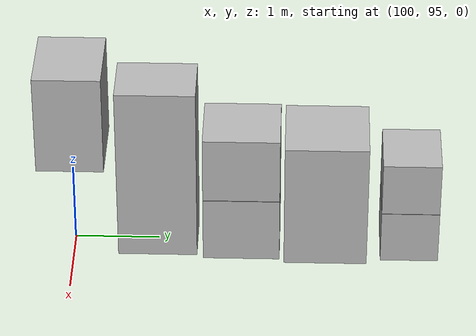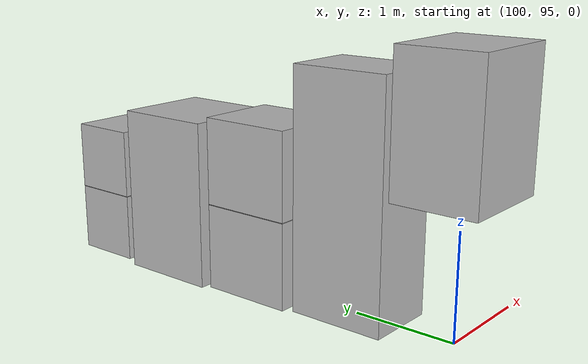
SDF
<sdf version="1.5">
 <world name="default">
  <model name="ground_plane">
   <static>true</static>
   <link name="link">
    <collision name="collision">
     <geometry><plane><normal>0 0 1</normal><size>250 250</size></plane></geometry>
     <surface><friction><ode><mu>1</mu><mu2>1</mu2></ode></friction></surface>
    </collision>
    <visual name="grass">
     <cast_shadows>false</cast_shadows>
     <geometry><mesh><uri>file://grass_plane/meshes/grass_plane.dae</uri></mesh></geometry>
    </visual>
   </link>
  </model>
  <model name="Cardboard_box_top_465">
   <link name="link_0">
    <pose>100 95 1.27230004981 0 0 0</pose>
    <inertial>
     <mass>1</mass>
     <inertia>
      <ixx>0.166667</ixx>
      <ixy>0</ixy>
      <ixz>0</ixz>
      <iyy>0.166667</iyy>
      <iyz>0</iyz>
      <izz>0.166667</izz>
     </inertia>
    </inertial>
    <collision name="collision">
     <geometry>
      <mesh>
       <uri>model://Cardboard_box/meshes/cardboard_box.dae</uri>
       <scale>2.34140249197 1.99526589595 3.18075012451</scale>
      </mesh>
     </geometry>
    </collision>
    <visual name="visual">
     <geometry>
      <mesh>
       <uri>model://Cardboard_box/meshes/cardboard_box.dae</uri>
       <scale>2.34140249197 1.99526589595 3.18075012451</scale>
      </mesh>
     </geometry>
    </visual>
   </link>
   <static>1</static>
  </model>
  <model name="Cardboard_box_466">
   <link name="link_0">
    <pose>100 96 0 0 0 0</pose>
    <inertial>
     <mass>1</mass>
     <inertia>
      <ixx>0.166667</ixx>
      <ixy>0</ixy>
      <ixz>0</ixz>
      <iyy>0.166667</iyy>
      <iyz>0</iyz>
      <izz>0.166667</izz>
     </inertia>
    </inertial>
    <collision name="collision">
     <geometry>
      <mesh>
       <uri>model://Cardboard_box/meshes/cardboard_box.dae</uri>
       <scale>1.7558336098 2.36996305045 5.7178186856</scale>
      </mesh>
     </geometry>
    </collision>
    <visual name="visual">
     <geometry>
      <mesh>
       <uri>model://Cardboard_box/meshes/cardboard_box.dae</uri>
       <scale>1.7558336098 2.36996305045 5.7178186856</scale>
      </mesh>
     </geometry>
    </visual>
   </link>
   <static>1</static>
  </model>
  <model name="Cardboard_box_467">
   <link name="link_0">
    <pose>100 97 0 0 0 0</pose>
    <inertial>
     <mass>1</mass>
     <inertia>
      <ixx>0.166667</ixx>
      <ixy>0</ixy>
      <ixz>0</ixz>
      <iyy>0.166667</iyy>
      <iyz>0</iyz>
      <izz>0.166667</izz>
     </inertia>
    </inertial>
    <collision name="collision">
     <geometry>
      <mesh>
       <uri>model://Cardboard_box/meshes/cardboard_box.dae</uri>
       <scale>2.04441788136 2.28997250621 2.10989312035</scale>
      </mesh>
     </geometry>
    </collision>
    <visual name="visual">
     <geometry>
      <mesh>
       <uri>model://Cardboard_box/meshes/cardboard_box.dae</uri>
       <scale>2.04441788136 2.28997250621 2.10989312035</scale>
      </mesh>
     </geometry>
    </visual>
   </link>
   <static>1</static>
  </model>
  <model name="Cardboard_box_top_467">
   <link name="link_0">
    <pose>100 97 0.84395724814 0 0 0</pose>
    <inertial>
     <mass>1</mass>
     <inertia>
      <ixx>0.166667</ixx>
      <ixy>0</ixy>
      <ixz>0</ixz>
      <iyy>0.166667</iyy>
      <iyz>0</iyz>
      <izz>0.166667</izz>
     </inertia>
    </inertial>
    <collision name="collision">
     <geometry>
      <mesh>
       <uri>model://Cardboard_box/meshes/cardboard_box.dae</uri>
       <scale>2.04441788136 2.28997250621 2.10989312035</scale>
      </mesh>
     </geometry>
    </collision>
    <visual name="visual">
     <geometry>
      <mesh>
       <uri>model://Cardboard_box/meshes/cardboard_box.dae</uri>
       <scale>2.04441788136 2.28997250621 2.10989312035</scale>
      </mesh>
     </geometry>
    </visual>
   </link>
   <static>1</static>
  </model>
  <model name="Cardboard_box_468">
   <link name="link_0">
    <pose>100 98 0 0 0 0</pose>
    <inertial>
     <mass>1</mass>
     <inertia>
      <ixx>0.166667</ixx>
      <ixy>0</ixy>
      <ixz>0</ixz>
      <iyy>0.166667</iyy>
      <iyz>0</iyz>
      <izz>0.166667</izz>
     </inertia>
    </inertial>
    <collision name="collision">
     <geometry>
      <mesh>
       <uri>model://Cardboard_box/meshes/cardboard_box.dae</uri>
       <scale>2.37040088964 2.47376877444 4.08889132504</scale>
      </mesh>
     </geometry>
    </collision>
    <visual name="visual">
     <geometry>
      <mesh>
       <uri>model://Cardboard_box/meshes/cardboard_box.dae</uri>
       <scale>2.37040088964 2.47376877444 4.08889132504</scale>
      </mesh>
     </geometry>
    </visual>
   </link>
   <static>1</static>
  </model>
  <model name="Cardboard_box_469">
   <link name="link_0">
    <pose>100 99 0 0 0 0</pose>
    <inertial>
     <mass>1</mass>
     <inertia>
      <ixx>0.166667</ixx>
      <ixy>0</ixy>
      <ixz>0</ixz>
      <iyy>0.166667</iyy>
      <iyz>0</iyz>
      <izz>0.166667</izz>
     </inertia>
    </inertial>
    <collision name="collision">
     <geometry>
      <mesh>
       <uri>model://Cardboard_box/meshes/cardboard_box.dae</uri>
       <scale>1.96192300203 1.72538352118 1.70635151777</scale>
      </mesh>
     </geometry>
    </collision>
    <visual name="visual">
     <geometry>
      <mesh>
       <uri>model://Cardboard_box/meshes/cardboard_box.dae</uri>
       <scale>1.96192300203 1.72538352118 1.70635151777</scale>
      </mesh>
     </geometry>
    </visual>
   </link>
   <static>1</static>
  </model>
  <model name="Cardboard_box_top_469">
   <link name="link_0">
    <pose>100 99 0.682540607108 0 0 0</pose>
    <inertial>
     <mass>1</mass>
     <inertia>
      <ixx>0.166667</ixx>
      <ixy>0</ixy>
      <ixz>0</ixz>
      <iyy>0.166667</iyy>
      <iyz>0</iyz>
      <izz>0.166667</izz>
     </inertia>
    </inertial>
    <collision name="collision">
     <geometry>
      <mesh>
       <uri>model://Cardboard_box/meshes/cardboard_box.dae</uri>
       <scale>1.96192300203 1.72538352118 1.70635151777</scale>
      </mesh>
     </geometry>
    </collision>
    <visual name="visual">
     <geometry>
      <mesh>
       <uri>model://Cardboard_box/meshes/cardboard_box.dae</uri>
       <scale>1.96192300203 1.72538352118 1.70635151777</scale>
      </mesh>
     </geometry>
    </visual>
   </link>
   <static>1</static>
  </model>
 </world>
</sdf>
